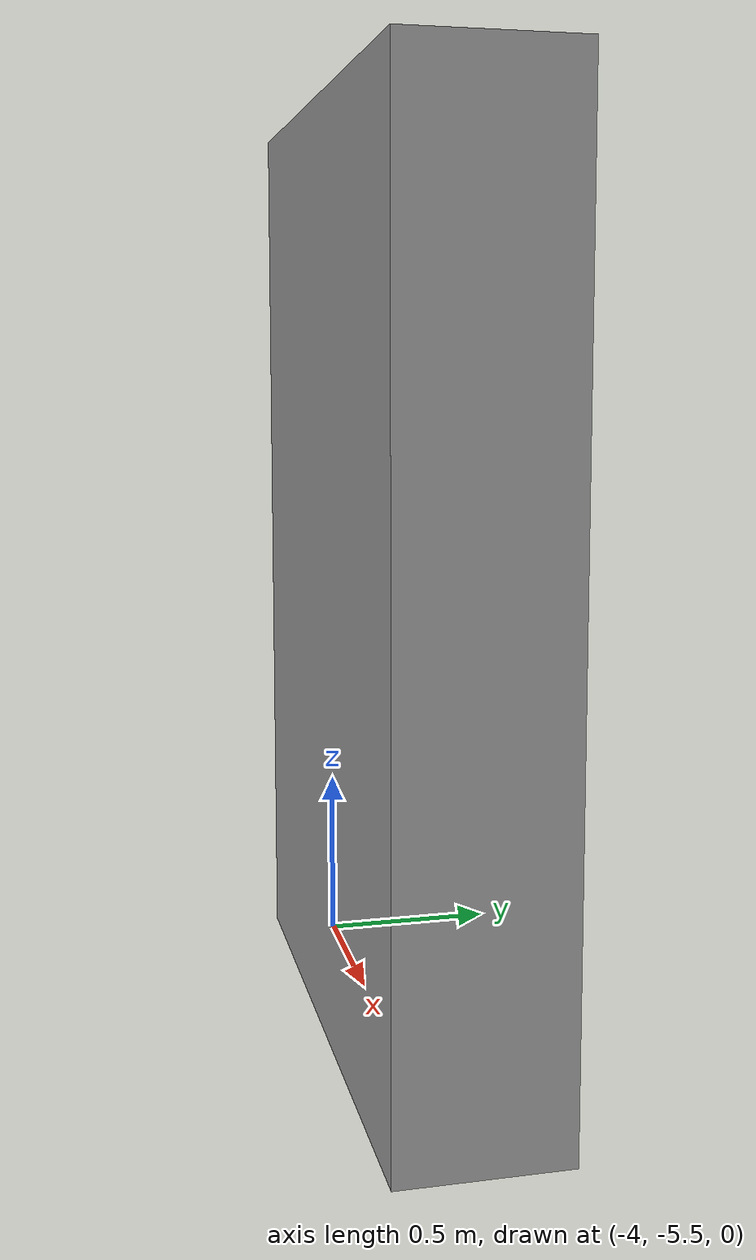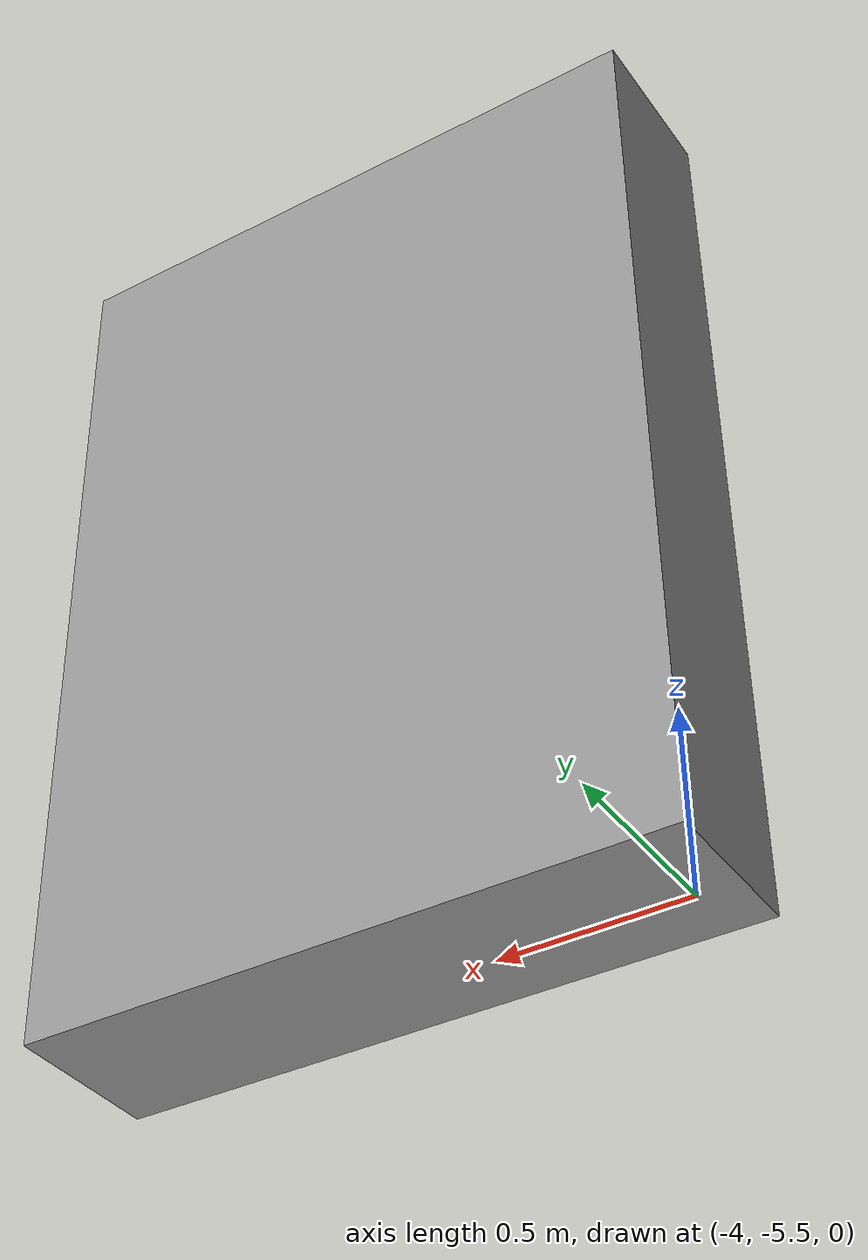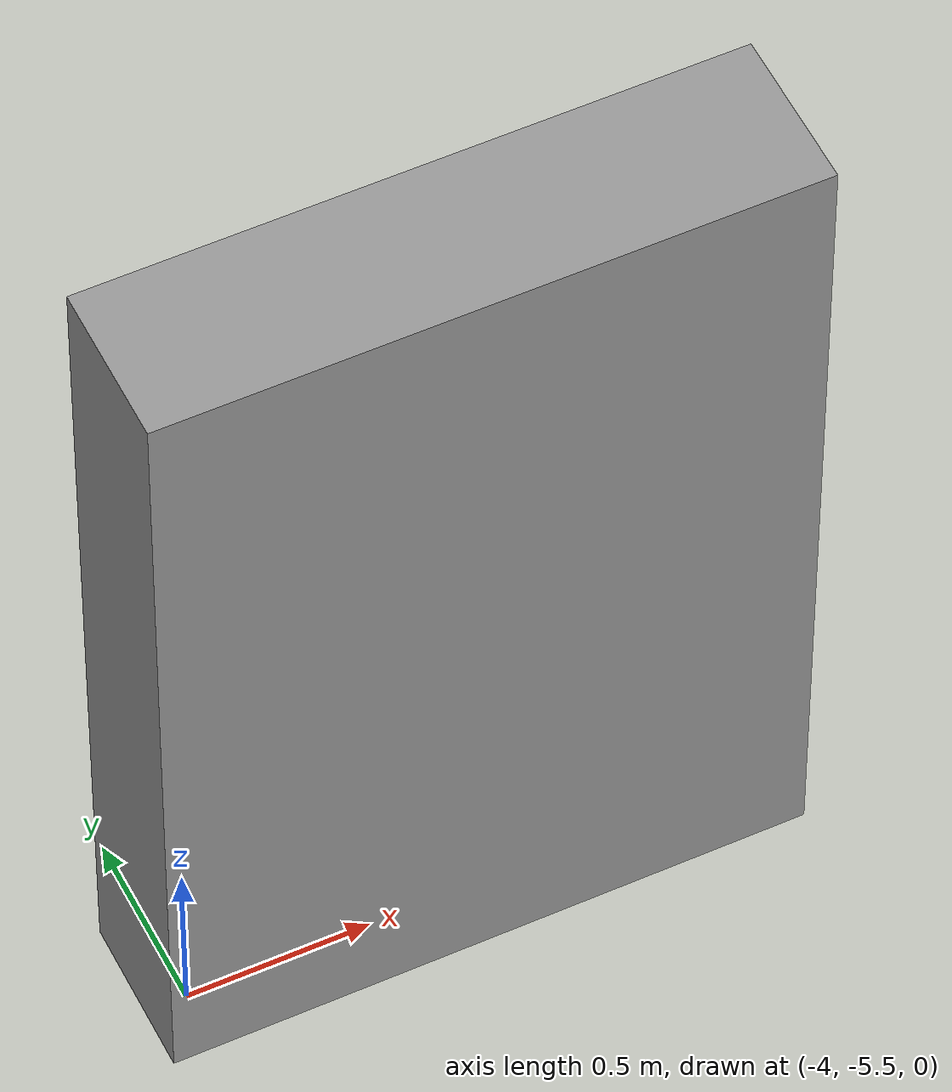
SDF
<?xml version='1.0'?>
<sdf version='1.6'>
  <model name='hood_table_White'>
    <pose frame=''>-3.243 -5.449 0 0 -0 0</pose>
    <link name='Wall_34'>
      <collision name='Wall_34_Collision'>
        <geometry>
          <box>
            <size>1.74 0.44 2.5</size>
          </box>
        </geometry>
        <pose frame=''>0 0 1.25 0 -0 0</pose>
      </collision>
      <visual name='Wall_34_Visual'>
        <pose frame=''>0 0 1.25 0 -0 0</pose>
        <geometry>
          <box>
            <size>1.74 0.44 2.5</size>
          </box>
        </geometry>
        <material>
          <script>
            <uri>file://media/materials/scripts/gazebo.material</uri>
            <name>Gazebo/Grey</name>
          </script>
          <ambient>1 1 1 1</ambient>
        </material>
      </visual>
      <pose frame=''>0 0 0 0 -0 0</pose>
    </link>
    <static>1</static>
  </model>
</sdf>
